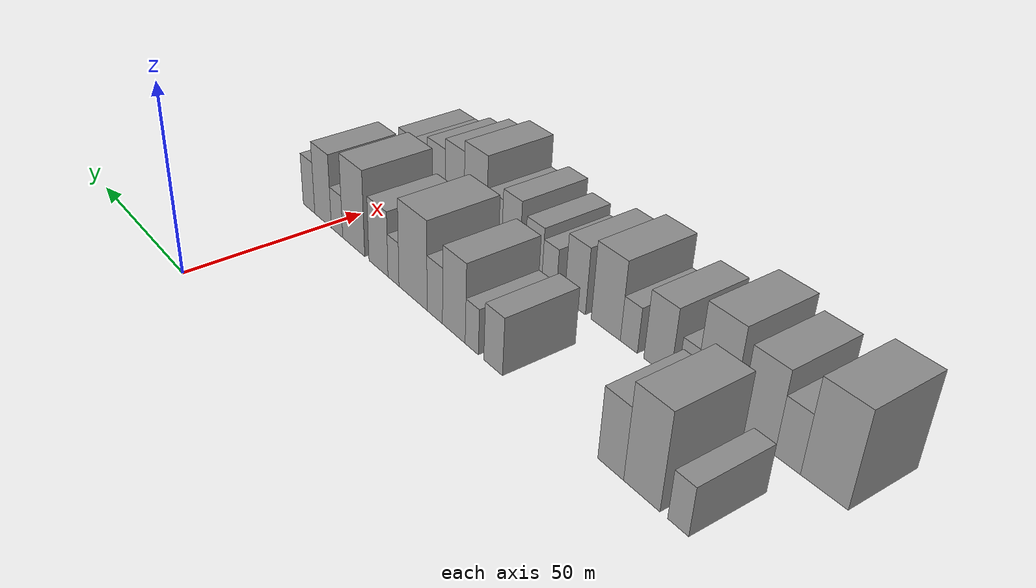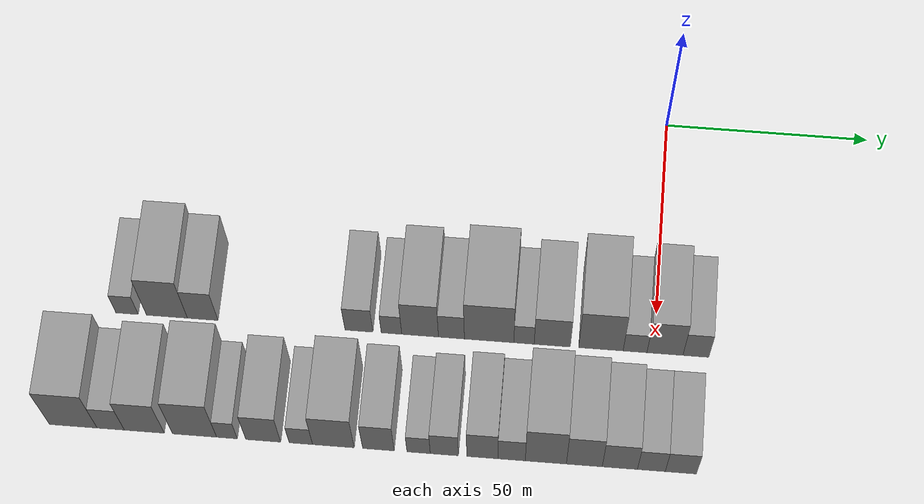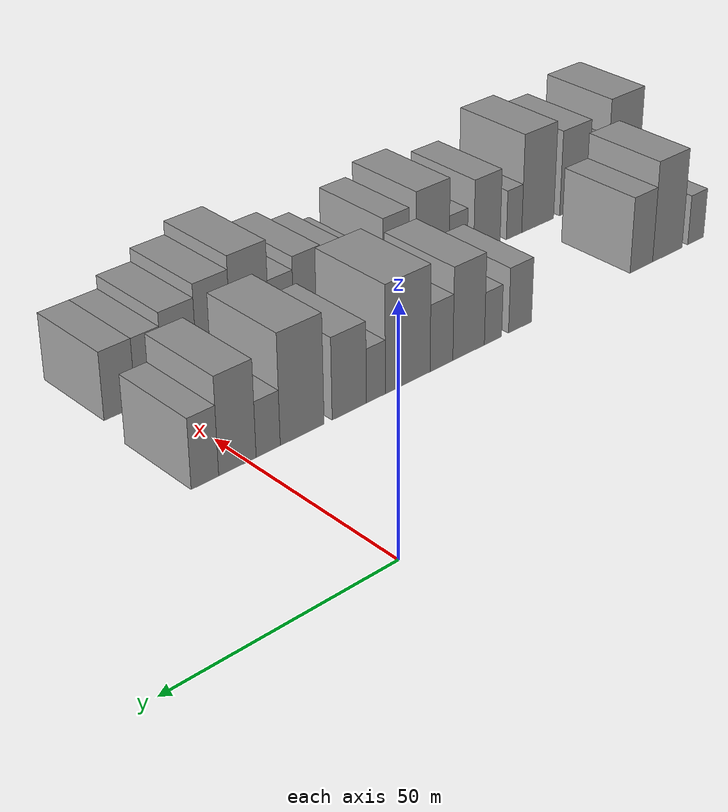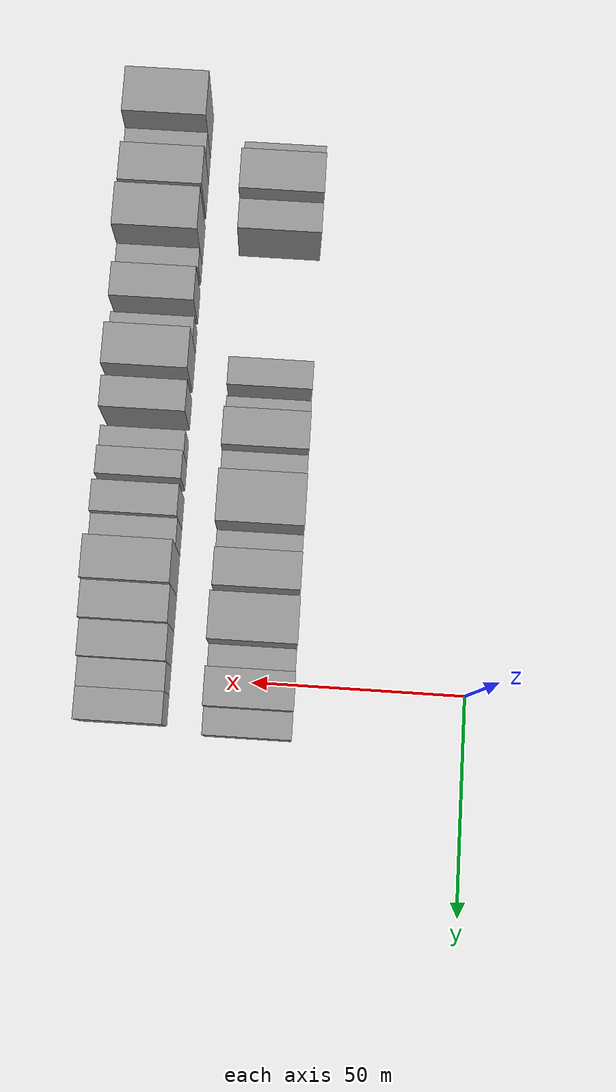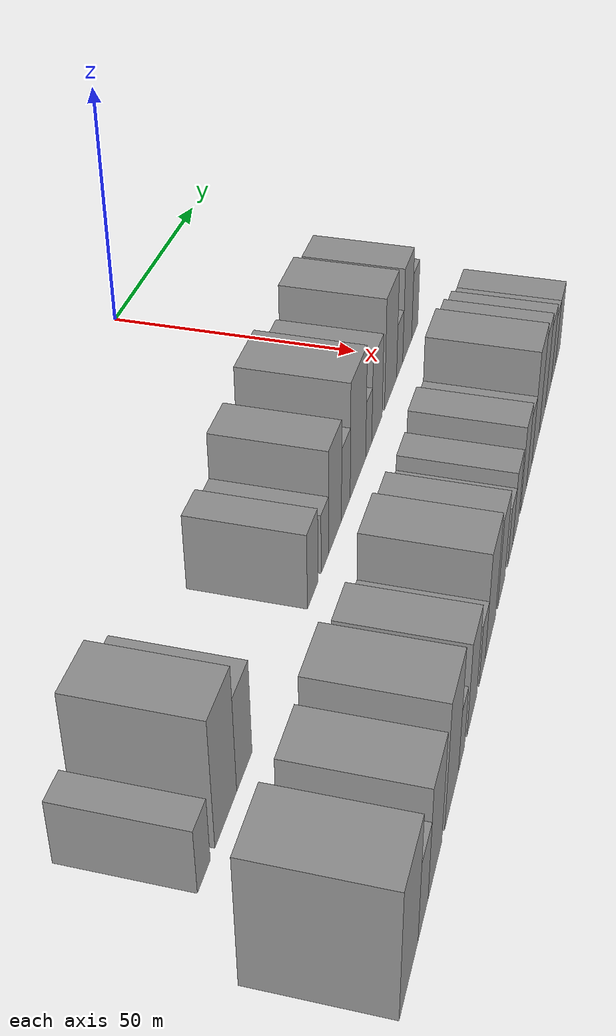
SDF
<sdf version="1.6">
 <world name="default">
  <model name="building_17">
   <static>1</static>
   <pose>50.0000 -127.2424 0 0.000000 0.000000 0.000000</pose>
   <link name="link">
    <pose>0 0 6.00 0 0 0</pose>
    <collision name="collision"><geometry><box><size>20.0000 5.4399 12.0000</size></box></geometry></collision>
    <visual name="visual">
     <cast_shadows>0</cast_shadows>
     <geometry><box><size>20.0000 5.4399 12.0000</size></box></geometry>
     <material>
      <script>
       <uri>model://grey_wall/materials/scripts</uri>
       <uri>model://grey_wall/materials/textures</uri>
       <name>vrc/grey_wall</name>
      </script>
     </material>
    </visual>
   </link>
  </model>
  <model name="building_18">
   <static>1</static>
   <pose>50.0000 -117.5544 0 0.000000 0.000000 0.000000</pose>
   <link name="link">
    <pose>0 0 12.00 0 0 0</pose>
    <collision name="collision"><geometry><box><size>20.0000 9.9362 24.0000</size></box></geometry></collision>
    <visual name="visual">
     <cast_shadows>0</cast_shadows>
     <geometry><box><size>20.0000 9.9362 24.0000</size></box></geometry>
     <material>
      <script>
       <uri>model://grey_wall/materials/scripts</uri>
       <uri>model://grey_wall/materials/textures</uri>
       <name>vrc/grey_wall</name>
      </script>
     </material>
    </visual>
   </link>
  </model>
  <model name="building_19">
   <static>1</static>
   <pose>50.0000 -108.8718 0 0.000000 0.000000 0.000000</pose>
   <link name="link">
    <pose>0 0 9.00 0 0 0</pose>
    <collision name="collision"><geometry><box><size>20.0000 7.4288 18.0000</size></box></geometry></collision>
    <visual name="visual">
     <cast_shadows>0</cast_shadows>
     <geometry><box><size>20.0000 7.4288 18.0000</size></box></geometry>
     <material>
      <script>
       <uri>model://grey_wall/materials/scripts</uri>
       <uri>model://grey_wall/materials/textures</uri>
       <name>vrc/grey_wall</name>
      </script>
     </material>
    </visual>
   </link>
  </model>
  <model name="building_20">
   <static>1</static>
   <pose>50.0000 -71.0486 0 0.000000 0.000000 0.000000</pose>
   <link name="link">
    <pose>0 0 7.50 0 0 0</pose>
    <collision name="collision"><geometry><box><size>20.0000 6.7392 15.0000</size></box></geometry></collision>
    <visual name="visual">
     <cast_shadows>0</cast_shadows>
     <geometry><box><size>20.0000 6.7392 15.0000</size></box></geometry>
     <material>
      <script>
       <uri>model://grey_wall/materials/scripts</uri>
       <uri>model://grey_wall/materials/textures</uri>
       <name>vrc/grey_wall</name>
      </script>
     </material>
    </visual>
   </link>
  </model>
  <model name="building_21">
   <static>1</static>
   <pose>50.0000 -63.2042 0 0.000000 0.000000 0.000000</pose>
   <link name="link">
    <pose>0 0 6.00 0 0 0</pose>
    <collision name="collision"><geometry><box><size>20.0000 4.9497 12.0000</size></box></geometry></collision>
    <visual name="visual">
     <cast_shadows>0</cast_shadows>
     <geometry><box><size>20.0000 4.9497 12.0000</size></box></geometry>
     <material>
      <script>
       <uri>model://grey_wall/materials/scripts</uri>
       <uri>model://grey_wall/materials/textures</uri>
       <name>vrc/grey_wall</name>
      </script>
     </material>
    </visual>
   </link>
  </model>
  <model name="building_22">
   <static>1</static>
   <pose>50.0000 -56.3069 0 0.000000 0.000000 0.000000</pose>
   <link name="link">
    <pose>0 0 10.50 0 0 0</pose>
    <collision name="collision"><geometry><box><size>20.0000 8.8449 21.0000</size></box></geometry></collision>
    <visual name="visual">
     <cast_shadows>0</cast_shadows>
     <geometry><box><size>20.0000 8.8449 21.0000</size></box></geometry>
     <material>
      <script>
       <uri>model://grey_wall/materials/scripts</uri>
       <uri>model://grey_wall/materials/textures</uri>
       <name>vrc/grey_wall</name>
      </script>
     </material>
    </visual>
   </link>
  </model>
  <model name="building_23">
   <static>1</static>
   <pose>50.0000 -48.7572 0 0.000000 0.000000 0.000000</pose>
   <link name="link">
    <pose>0 0 7.50 0 0 0</pose>
    <collision name="collision"><geometry><box><size>20.0000 6.2545 15.0000</size></box></geometry></collision>
    <visual name="visual">
     <cast_shadows>0</cast_shadows>
     <geometry><box><size>20.0000 6.2545 15.0000</size></box></geometry>
     <material>
      <script>
       <uri>model://grey_wall/materials/scripts</uri>
       <uri>model://grey_wall/materials/textures</uri>
       <name>vrc/grey_wall</name>
      </script>
     </material>
    </visual>
   </link>
  </model>
  <model name="building_24">
   <static>1</static>
   <pose>50.0000 -39.6794 0 0.000000 0.000000 0.000000</pose>
   <link name="link">
    <pose>0 0 12.00 0 0 0</pose>
    <collision name="collision"><geometry><box><size>20.0000 11.9011 24.0000</size></box></geometry></collision>
    <visual name="visual">
     <cast_shadows>0</cast_shadows>
     <geometry><box><size>20.0000 11.9011 24.0000</size></box></geometry>
     <material>
      <script>
       <uri>model://grey_wall/materials/scripts</uri>
       <uri>model://grey_wall/materials/textures</uri>
       <name>vrc/grey_wall</name>
      </script>
     </material>
    </visual>
   </link>
  </model>
  <model name="building_25">
   <static>1</static>
   <pose>50.0000 -31.2915 0 0.000000 0.000000 0.000000</pose>
   <link name="link">
    <pose>0 0 6.00 0 0 0</pose>
    <collision name="collision"><geometry><box><size>20.0000 4.8747 12.0000</size></box></geometry></collision>
    <visual name="visual">
     <cast_shadows>0</cast_shadows>
     <geometry><box><size>20.0000 4.8747 12.0000</size></box></geometry>
     <material>
      <script>
       <uri>model://grey_wall/materials/scripts</uri>
       <uri>model://grey_wall/materials/textures</uri>
       <name>vrc/grey_wall</name>
      </script>
     </material>
    </visual>
   </link>
  </model>
  <model name="building_26">
   <static>1</static>
   <pose>50.0000 -24.5110 0 0.000000 0.000000 0.000000</pose>
   <link name="link">
    <pose>0 0 9.00 0 0 0</pose>
    <collision name="collision"><geometry><box><size>20.0000 8.6863 18.0000</size></box></geometry></collision>
    <visual name="visual">
     <cast_shadows>0</cast_shadows>
     <geometry><box><size>20.0000 8.6863 18.0000</size></box></geometry>
     <material>
      <script>
       <uri>model://grey_wall/materials/scripts</uri>
       <uri>model://grey_wall/materials/textures</uri>
       <name>vrc/grey_wall</name>
      </script>
     </material>
    </visual>
   </link>
  </model>
  <model name="building_27">
   <static>1</static>
   <pose>50.0000 -12.8397 0 0.000000 0.000000 0.000000</pose>
   <link name="link">
    <pose>0 0 12.00 0 0 0</pose>
    <collision name="collision"><geometry><box><size>20.0000 10.6564 24.0000</size></box></geometry></collision>
    <visual name="visual">
     <cast_shadows>0</cast_shadows>
     <geometry><box><size>20.0000 10.6564 24.0000</size></box></geometry>
     <material>
      <script>
       <uri>model://grey_wall/materials/scripts</uri>
       <uri>model://grey_wall/materials/textures</uri>
       <name>vrc/grey_wall</name>
      </script>
     </material>
    </visual>
   </link>
  </model>
  <model name="building_28">
   <static>1</static>
   <pose>50.0000 -4.6544 0 0.000000 0.000000 0.000000</pose>
   <link name="link">
    <pose>0 0 6.00 0 0 0</pose>
    <collision name="collision"><geometry><box><size>20.0000 5.7142 12.0000</size></box></geometry></collision>
    <visual name="visual">
     <cast_shadows>0</cast_shadows>
     <geometry><box><size>20.0000 5.7142 12.0000</size></box></geometry>
     <material>
      <script>
       <uri>model://grey_wall/materials/scripts</uri>
       <uri>model://grey_wall/materials/textures</uri>
       <name>vrc/grey_wall</name>
      </script>
     </material>
    </visual>
   </link>
  </model>
  <model name="building_29">
   <static>1</static>
   <pose>50.0000 2.5141 0 0.000000 0.000000 0.000000</pose>
   <link name="link">
    <pose>0 0 10.50 0 0 0</pose>
    <collision name="collision"><geometry><box><size>20.0000 8.6228 21.0000</size></box></geometry></collision>
    <visual name="visual">
     <cast_shadows>0</cast_shadows>
     <geometry><box><size>20.0000 8.6228 21.0000</size></box></geometry>
     <material>
      <script>
       <uri>model://grey_wall/materials/scripts</uri>
       <uri>model://grey_wall/materials/textures</uri>
       <name>vrc/grey_wall</name>
      </script>
     </material>
    </visual>
   </link>
  </model>
  <model name="building_30">
   <static>1</static>
   <pose>50.0000 9.9196 0 0.000000 0.000000 0.000000</pose>
   <link name="link">
    <pose>0 0 7.50 0 0 0</pose>
    <collision name="collision"><geometry><box><size>20.0000 6.1883 15.0000</size></box></geometry></collision>
    <visual name="visual">
     <cast_shadows>0</cast_shadows>
     <geometry><box><size>20.0000 6.1883 15.0000</size></box></geometry>
     <material>
      <script>
       <uri>model://grey_wall/materials/scripts</uri>
       <uri>model://grey_wall/materials/textures</uri>
       <name>vrc/grey_wall</name>
      </script>
     </material>
    </visual>
   </link>
  </model>
  <model name="building_77">
   <static>1</static>
   <pose>79.0000 -135.9232 0 0.000000 0.000000 0.000000</pose>
   <link name="link">
    <pose>0 0 12.00 0 0 0</pose>
    <collision name="collision"><geometry><box><size>20.0000 11.3415 24.0000</size></box></geometry></collision>
    <visual name="visual">
     <cast_shadows>0</cast_shadows>
     <geometry><box><size>20.0000 11.3415 24.0000</size></box></geometry>
     <material>
      <script>
       <uri>model://grey_wall/materials/scripts</uri>
       <uri>model://grey_wall/materials/textures</uri>
       <name>vrc/grey_wall</name>
      </script>
     </material>
    </visual>
   </link>
  </model>
  <model name="building_78">
   <static>1</static>
   <pose>79.0000 -127.0063 0 0.000000 0.000000 0.000000</pose>
   <link name="link">
    <pose>0 0 7.50 0 0 0</pose>
    <collision name="collision"><geometry><box><size>20.0000 6.4922 15.0000</size></box></geometry></collision>
    <visual name="visual">
     <cast_shadows>0</cast_shadows>
     <geometry><box><size>20.0000 6.4922 15.0000</size></box></geometry>
     <material>
      <script>
       <uri>model://grey_wall/materials/scripts</uri>
       <uri>model://grey_wall/materials/textures</uri>
       <name>vrc/grey_wall</name>
      </script>
     </material>
    </visual>
   </link>
  </model>
  <model name="building_79">
   <static>1</static>
   <pose>79.0000 -119.0213 0 0.000000 0.000000 0.000000</pose>
   <link name="link">
    <pose>0 0 10.50 0 0 0</pose>
    <collision name="collision"><geometry><box><size>20.0000 9.4777 21.0000</size></box></geometry></collision>
    <visual name="visual">
     <cast_shadows>0</cast_shadows>
     <geometry><box><size>20.0000 9.4777 21.0000</size></box></geometry>
     <material>
      <script>
       <uri>model://grey_wall/materials/scripts</uri>
       <uri>model://grey_wall/materials/textures</uri>
       <name>vrc/grey_wall</name>
      </script>
     </material>
    </visual>
   </link>
  </model>
  <model name="building_80">
   <static>1</static>
   <pose>79.0000 -107.0539 0 0.000000 0.000000 0.000000</pose>
   <link name="link">
    <pose>0 0 12.00 0 0 0</pose>
    <collision name="collision"><geometry><box><size>20.0000 10.4571 24.0000</size></box></geometry></collision>
    <visual name="visual">
     <cast_shadows>0</cast_shadows>
     <geometry><box><size>20.0000 10.4571 24.0000</size></box></geometry>
     <material>
      <script>
       <uri>model://grey_wall/materials/scripts</uri>
       <uri>model://grey_wall/materials/textures</uri>
       <name>vrc/grey_wall</name>
      </script>
     </material>
    </visual>
   </link>
  </model>
  <model name="building_81">
   <static>1</static>
   <pose>79.0000 -99.3627 0 0.000000 0.000000 0.000000</pose>
   <link name="link">
    <pose>0 0 6.00 0 0 0</pose>
    <collision name="collision"><geometry><box><size>20.0000 4.9252 12.0000</size></box></geometry></collision>
    <visual name="visual">
     <cast_shadows>0</cast_shadows>
     <geometry><box><size>20.0000 4.9252 12.0000</size></box></geometry>
     <material>
      <script>
       <uri>model://grey_wall/materials/scripts</uri>
       <uri>model://grey_wall/materials/textures</uri>
       <name>vrc/grey_wall</name>
      </script>
     </material>
    </visual>
   </link>
  </model>
  <model name="building_82">
   <static>1</static>
   <pose>79.0000 -90.7620 0 0.000000 0.000000 0.000000</pose>
   <link name="link">
    <pose>0 0 9.00 0 0 0</pose>
    <collision name="collision"><geometry><box><size>20.0000 8.2764 18.0000</size></box></geometry></collision>
    <visual name="visual">
     <cast_shadows>0</cast_shadows>
     <geometry><box><size>20.0000 8.2764 18.0000</size></box></geometry>
     <material>
      <script>
       <uri>model://grey_wall/materials/scripts</uri>
       <uri>model://grey_wall/materials/textures</uri>
       <name>vrc/grey_wall</name>
      </script>
     </material>
    </visual>
   </link>
  </model>
  <model name="building_83">
   <static>1</static>
   <pose>79.0000 -81.8511 0 0.000000 0.000000 0.000000</pose>
   <link name="link">
    <pose>0 0 6.00 0 0 0</pose>
    <collision name="collision"><geometry><box><size>20.0000 5.5454 12.0000</size></box></geometry></collision>
    <visual name="visual">
     <cast_shadows>0</cast_shadows>
     <geometry><box><size>20.0000 5.5454 12.0000</size></box></geometry>
     <material>
      <script>
       <uri>model://grey_wall/materials/scripts</uri>
       <uri>model://grey_wall/materials/textures</uri>
       <name>vrc/grey_wall</name>
      </script>
     </material>
    </visual>
   </link>
  </model>
  <model name="building_84">
   <static>1</static>
   <pose>79.0000 -74.1508 0 0.000000 0.000000 0.000000</pose>
   <link name="link">
    <pose>0 0 10.50 0 0 0</pose>
    <collision name="collision"><geometry><box><size>20.0000 9.8551 21.0000</size></box></geometry></collision>
    <visual name="visual">
     <cast_shadows>0</cast_shadows>
     <geometry><box><size>20.0000 9.8551 21.0000</size></box></geometry>
     <material>
      <script>
       <uri>model://grey_wall/materials/scripts</uri>
       <uri>model://grey_wall/materials/textures</uri>
       <name>vrc/grey_wall</name>
      </script>
     </material>
    </visual>
   </link>
  </model>
  <model name="building_85">
   <static>1</static>
   <pose>79.0000 -63.4938 0 0.000000 0.000000 0.000000</pose>
   <link name="link">
    <pose>0 0 9.00 0 0 0</pose>
    <collision name="collision"><geometry><box><size>20.0000 7.4589 18.0000</size></box></geometry></collision>
    <visual name="visual">
     <cast_shadows>0</cast_shadows>
     <geometry><box><size>20.0000 7.4589 18.0000</size></box></geometry>
     <material>
      <script>
       <uri>model://grey_wall/materials/scripts</uri>
       <uri>model://grey_wall/materials/textures</uri>
       <name>vrc/grey_wall</name>
      </script>
     </material>
    </visual>
   </link>
  </model>
  <model name="building_86">
   <static>1</static>
   <pose>79.0000 -54.0118 0 0.000000 0.000000 0.000000</pose>
   <link name="link">
    <pose>0 0 6.00 0 0 0</pose>
    <collision name="collision"><geometry><box><size>20.0000 5.5050 12.0000</size></box></geometry></collision>
    <visual name="visual">
     <cast_shadows>0</cast_shadows>
     <geometry><box><size>20.0000 5.5050 12.0000</size></box></geometry>
     <material>
      <script>
       <uri>model://grey_wall/materials/scripts</uri>
       <uri>model://grey_wall/materials/textures</uri>
       <name>vrc/grey_wall</name>
      </script>
     </material>
    </visual>
   </link>
  </model>
  <model name="building_87">
   <static>1</static>
   <pose>79.0000 -47.9459 0 0.000000 0.000000 0.000000</pose>
   <link name="link">
    <pose>0 0 7.50 0 0 0</pose>
    <collision name="collision"><geometry><box><size>20.0000 6.6269 15.0000</size></box></geometry></collision>
    <visual name="visual">
     <cast_shadows>0</cast_shadows>
     <geometry><box><size>20.0000 6.6269 15.0000</size></box></geometry>
     <material>
      <script>
       <uri>model://grey_wall/materials/scripts</uri>
       <uri>model://grey_wall/materials/textures</uri>
       <name>vrc/grey_wall</name>
      </script>
     </material>
    </visual>
   </link>
  </model>
  <model name="building_88">
   <static>1</static>
   <pose>79.0000 -38.9713 0 0.000000 0.000000 0.000000</pose>
   <link name="link">
    <pose>0 0 9.00 0 0 0</pose>
    <collision name="collision"><geometry><box><size>20.0000 7.3222 18.0000</size></box></geometry></collision>
    <visual name="visual">
     <cast_shadows>0</cast_shadows>
     <geometry><box><size>20.0000 7.3222 18.0000</size></box></geometry>
     <material>
      <script>
       <uri>model://grey_wall/materials/scripts</uri>
       <uri>model://grey_wall/materials/textures</uri>
       <name>vrc/grey_wall</name>
      </script>
     </material>
    </visual>
   </link>
  </model>
  <model name="building_89">
   <static>1</static>
   <pose>79.0000 -32.0937 0 0.000000 0.000000 0.000000</pose>
   <link name="link">
    <pose>0 0 7.50 0 0 0</pose>
    <collision name="collision"><geometry><box><size>20.0000 6.4329 15.0000</size></box></geometry></collision>
    <visual name="visual">
     <cast_shadows>0</cast_shadows>
     <geometry><box><size>20.0000 6.4329 15.0000</size></box></geometry>
     <material>
      <script>
       <uri>model://grey_wall/materials/scripts</uri>
       <uri>model://grey_wall/materials/textures</uri>
       <name>vrc/grey_wall</name>
      </script>
     </material>
    </visual>
   </link>
  </model>
  <model name="building_90">
   <static>1</static>
   <pose>79.0000 -24.0460 0 0.000000 0.000000 0.000000</pose>
   <link name="link">
    <pose>0 0 12.00 0 0 0</pose>
    <collision name="collision"><geometry><box><size>20.0000 9.6625 24.0000</size></box></geometry></collision>
    <visual name="visual">
     <cast_shadows>0</cast_shadows>
     <geometry><box><size>20.0000 9.6625 24.0000</size></box></geometry>
     <material>
      <script>
       <uri>model://grey_wall/materials/scripts</uri>
       <uri>model://grey_wall/materials/textures</uri>
       <name>vrc/grey_wall</name>
      </script>
     </material>
    </visual>
   </link>
  </model>
  <model name="building_91">
   <static>1</static>
   <pose>79.0000 -14.9949 0 0.000000 0.000000 0.000000</pose>
   <link name="link">
    <pose>0 0 10.50 0 0 0</pose>
    <collision name="collision"><geometry><box><size>20.0000 8.4397 21.0000</size></box></geometry></collision>
    <visual name="visual">
     <cast_shadows>0</cast_shadows>
     <geometry><box><size>20.0000 8.4397 21.0000</size></box></geometry>
     <material>
      <script>
       <uri>model://grey_wall/materials/scripts</uri>
       <uri>model://grey_wall/materials/textures</uri>
       <name>vrc/grey_wall</name>
      </script>
     </material>
    </visual>
   </link>
  </model>
  <model name="building_92">
   <static>1</static>
   <pose>79.0000 -6.6429 0 0.000000 0.000000 0.000000</pose>
   <link name="link">
    <pose>0 0 9.00 0 0 0</pose>
    <collision name="collision"><geometry><box><size>20.0000 8.2645 18.0000</size></box></geometry></collision>
    <visual name="visual">
     <cast_shadows>0</cast_shadows>
     <geometry><box><size>20.0000 8.2645 18.0000</size></box></geometry>
     <material>
      <script>
       <uri>model://grey_wall/materials/scripts</uri>
       <uri>model://grey_wall/materials/textures</uri>
       <name>vrc/grey_wall</name>
      </script>
     </material>
    </visual>
   </link>
  </model>
  <model name="building_93">
   <static>1</static>
   <pose>79.0000 0.7584 0 0.000000 0.000000 0.000000</pose>
   <link name="link">
    <pose>0 0 7.50 0 0 0</pose>
    <collision name="collision"><geometry><box><size>20.0000 6.5380 15.0000</size></box></geometry></collision>
    <visual name="visual">
     <cast_shadows>0</cast_shadows>
     <geometry><box><size>20.0000 6.5380 15.0000</size></box></geometry>
     <material>
      <script>
       <uri>model://grey_wall/materials/scripts</uri>
       <uri>model://grey_wall/materials/textures</uri>
       <name>vrc/grey_wall</name>
      </script>
     </material>
    </visual>
   </link>
  </model>
  <model name="building_94">
   <static>1</static>
   <pose>79.0000 7.6810 0 0.000000 0.000000 0.000000</pose>
   <link name="link">
    <pose>0 0 7.50 0 0 0</pose>
    <collision name="collision"><geometry><box><size>20.0000 7.3074 15.0000</size></box></geometry></collision>
    <visual name="visual">
     <cast_shadows>0</cast_shadows>
     <geometry><box><size>20.0000 7.3074 15.0000</size></box></geometry>
     <material>
      <script>
       <uri>model://grey_wall/materials/scripts</uri>
       <uri>model://grey_wall/materials/textures</uri>
       <name>vrc/grey_wall</name>
      </script>
     </material>
    </visual>
   </link>
  </model>
 </world>
</sdf>
